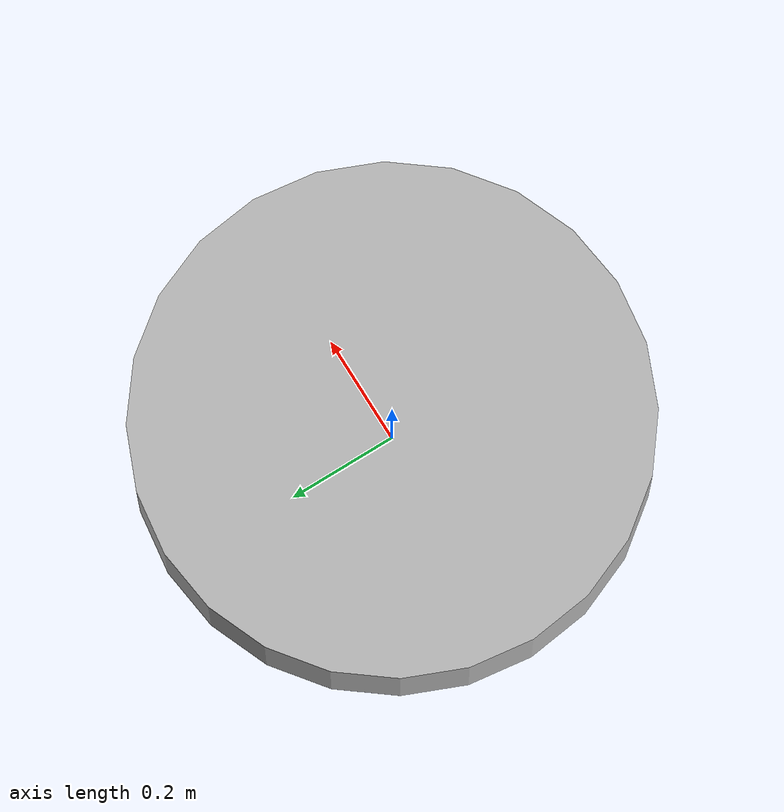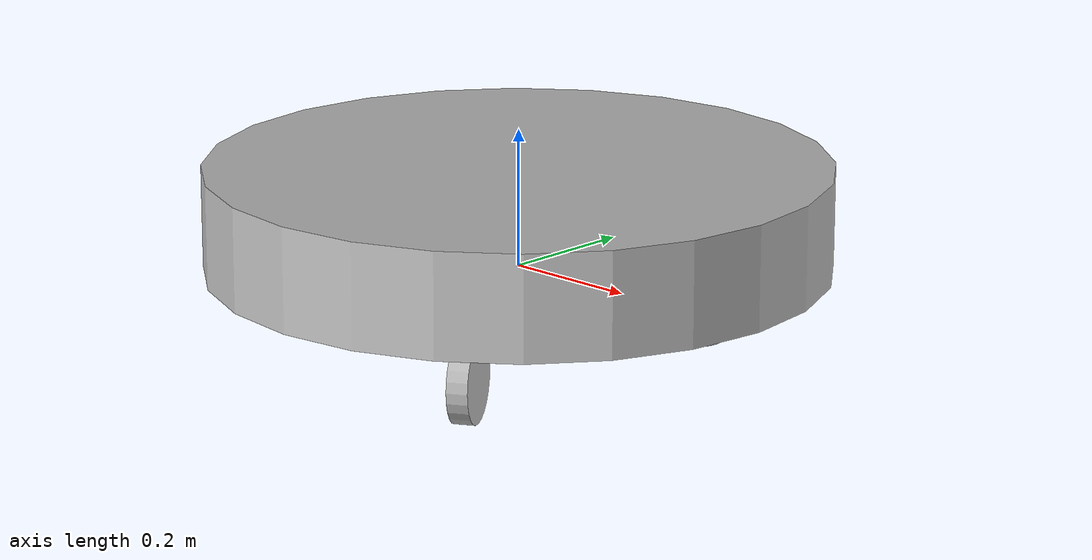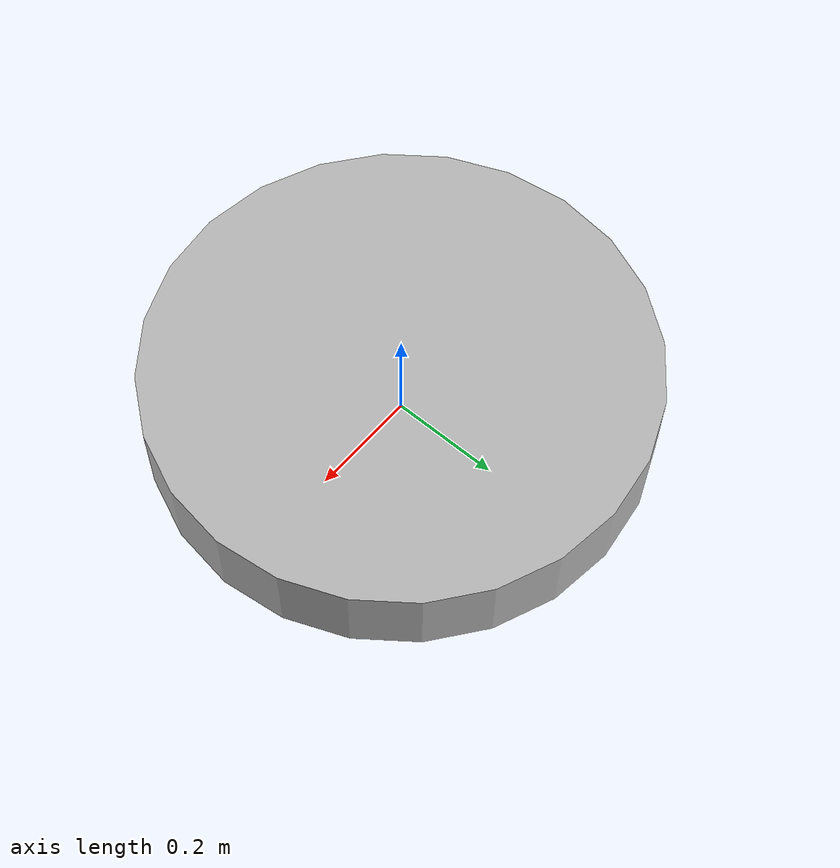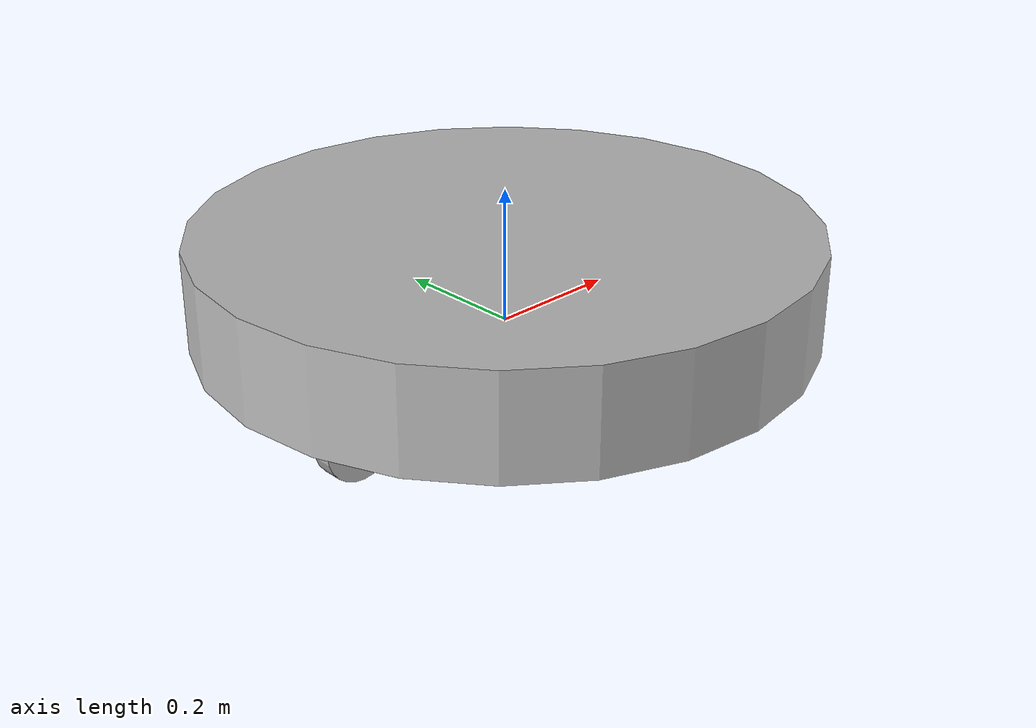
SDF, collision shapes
<?xml version='1.0'?>
<sdf version="1.6">
	<model name='booblik'>
		<!-- База бублика -->
		<link name='base_link'>
			<inertial>
				<mass>15</mass>
				<inertia>
					<ixx>0.7875</ixx>
					<ixy>0</ixy>
					<ixz>0</ixz>
					<iyy>0.7875</iyy>
					<iyz>0</iyz>
					<izz>1.5188</izz>
				</inertia>
				<pose>0 0 0.075 0 0 0</pose>
			</inertial>
			<collision name='main_body'>
				<geometry>
					<cylinder>
						<radius>0.45</radius>
						<length>0.15</length>
					</cylinder>
				</geometry>
				<pose>0 0 0.075 0 0 0</pose>
				<surface>
					<friction>
						<ode />
					</friction>
					<bounce />
					<contact />
				</surface>
			</collision>
			<visual name='visual'>
				<geometry>
					<mesh>
						<uri>file:///model://booblik/meshes/booblik.dae</uri>
					</mesh>
				</geometry>
			</visual>
			<pose>0 0 0 0 0 3.141592654</pose>
			<sensor name='navsat' type='navsat'>
				<always_on>true</always_on>
				<update_rate>10</update_rate>
				<gps/>
			</sensor>
			<sensor name='imu' type='imu'>
				<pose>0 0 0 0 0 0</pose>
				<update_rate>20</update_rate>
				<enable_metrics>false</enable_metrics>
				<imu>
					<orientation_reference_frame>
						<localization>CUSTOM</localization>
						<custom_rpy>0 0 0</custom_rpy>
						<grav_dir_x>1 0 0</grav_dir_x>
					</orientation_reference_frame>
					<angular_velocity>
						<x>
							<noise type='gaussian'>
								<mean>0</mean>
								<stddev>0.0089999999999999993</stddev>
								<bias_mean>0.00075000000000000002</bias_mean>
								<bias_stddev>0.0050000000000000001</bias_stddev>
								<dynamic_bias_stddev>2.0000000000000002e-05</dynamic_bias_stddev>
								<dynamic_bias_correlation_time>400</dynamic_bias_correlation_time>
								<precision>0.00025000000000000001</precision>
							</noise>
						</x>
						<y>
							<noise type='gaussian'>
								<mean>0</mean>
								<stddev>0.0089999999999999993</stddev>
								<bias_mean>0.00075000000000000002</bias_mean>
								<bias_stddev>0.0050000000000000001</bias_stddev>
								<dynamic_bias_stddev>2.0000000000000002e-05</dynamic_bias_stddev>
								<dynamic_bias_correlation_time>400</dynamic_bias_correlation_time>
								<precision>0.00025000000000000001</precision>
							</noise>
						</y>
						<z>
							<noise type='gaussian'>
								<mean>0</mean>
								<stddev>0.0089999999999999993</stddev>
								<bias_mean>0.00075000000000000002</bias_mean>
								<bias_stddev>0.0050000000000000001</bias_stddev>
								<dynamic_bias_stddev>2.0000000000000002e-05</dynamic_bias_stddev>
								<dynamic_bias_correlation_time>400</dynamic_bias_correlation_time>
								<precision>0.00025000000000000001</precision>
							</noise>
						</z>
					</angular_velocity>
					<linear_acceleration>
						<x>
							<noise type='gaussian'>
								<mean>0</mean>
								<stddev>0.021000000000000001</stddev>
								<bias_mean>0.050000000000000003</bias_mean>
								<bias_stddev>0.0074999999999999997</bias_stddev>
								<dynamic_bias_stddev>0.00037500000000000001</dynamic_bias_stddev>
								<dynamic_bias_correlation_time>175</dynamic_bias_correlation_time>
								<precision>0.0050000000000000001</precision>
							</noise>
						</x>
						<y>
							<noise type='gaussian'>
								<mean>0</mean>
								<stddev>0.021000000000000001</stddev>
								<bias_mean>0.050000000000000003</bias_mean>
								<bias_stddev>0.0074999999999999997</bias_stddev>
								<dynamic_bias_stddev>0.00037500000000000001</dynamic_bias_stddev>
								<dynamic_bias_correlation_time>175</dynamic_bias_correlation_time>
								<precision>0.0050000000000000001</precision>
							</noise>
						</y>
						<z>
							<noise type='gaussian'>
								<mean>0</mean>
								<stddev>0.021000000000000001</stddev>
								<bias_mean>0.050000000000000003</bias_mean>
								<bias_stddev>0.0074999999999999997</bias_stddev>
								<dynamic_bias_stddev>0.00037500000000000001</dynamic_bias_stddev>
								<dynamic_bias_correlation_time>175</dynamic_bias_correlation_time>
								<precision>0.0050000000000000001</precision>
							</noise>
						</z>
					</linear_acceleration>
					<enable_orientation>true</enable_orientation>
				</imu>
			</sensor>
			<sensor name='camera' type='camera'>
				<pose>-0.288468360 0 0.248385619 0 -0.3 3.141592654</pose>
				<topic>__default__</topic>
				<update_rate>24</update_rate>
				<enable_metrics>false</enable_metrics>
				<visualize>true</visualize>
				<camera name='camera'>
					<pose>0 0 0 0 0 0</pose>
					<horizontal_fov>2.094395102</horizontal_fov>
					<image>
						<width>1280</width>
						<height>720</height>
						<format>RGB_INT8</format>
						<anti_aliasing>4</anti_aliasing>
					</image>
					<camera_info_topic>camera_info</camera_info_topic>
					<trigger_topic></trigger_topic>
					<triggered>false</triggered>
					<clip>
						<near>0.050000000000000003</near>
						<far>300</far>
					</clip>
					<save enabled='false'>
						<path>__default__</path>
					</save>
					<visibility_mask>4294967295</visibility_mask>
					<noise>
						<type>gaussian</type>
						<mean>0</mean>
						<stddev>0.0070000000000000001</stddev>
					</noise>
					<distortion>
						<k1>0</k1>
						<k2>0</k2>
						<k3>0</k3>
						<p1>0</p1>
						<p2>0</p2>
						<center>0.5 0.5</center>
					</distortion>
					<lens>
						<type>stereographic</type>
						<scale_to_hfov>true</scale_to_hfov>
						<cutoff_angle>1.5707963267948966</cutoff_angle>
						<env_texture_size>256</env_texture_size>
					</lens>
					<optical_frame_id></optical_frame_id>
				</camera>
			</sensor>
			<enable_wind>false</enable_wind>
		</link>
		<link name='left_propeller_link'>
			<pose>0.140000000 0.242487113 -0.082455806 0 1.570796327 2.617993878</pose>
			<inertial>
				<pose>0 0 0 0 0 0</pose>
				<mass>0.1</mass>
				<inertia>
					<ixx>0.000009333</ixx>
					<ixy>0</ixy>
					<ixz>0</ixz>
					<iyy>0.000009333</iyy>
					<iyz>0</iyz>
					<izz>0.000018</izz>
				</inertia>
			</inertial>
			<collision name='collision'>
				<geometry>
					<cylinder>
						<radius>0.06</radius>
						<length>0.03</length>
					</cylinder>
				</geometry>
				<surface>
					<friction>
						<ode/>
					</friction>
					<bounce/>
					<contact/>
				</surface>
			</collision>
			<visual name='visual'>
				<pose>0 0 -0.01 0 0 0</pose>
				<geometry>
					<mesh>
						<uri>file:///model://booblik/meshes/prop.dae</uri>
					</mesh>
				</geometry>
			</visual>
			<enable_wind>false</enable_wind>
		</link>
		<joint name='left_engine_propeller_joint' type='revolute'>
			<pose>0 0 0 0 0 0</pose>
			<parent>base_link</parent>
			<child>left_propeller_link</child>
			<axis>
				<xyz>0 0 -1</xyz>
				<limit>
					<lower>-inf</lower>
					<upper>inf</upper>
					<effort>100</effort>
					<stiffness>100000000</stiffness>
					<dissipation>1</dissipation>
				</limit>
				<dynamics>
					<friction>0.050000000000000003</friction>
					<damping>0.050000000000000003</damping>
				</dynamics>
			</axis>
		</joint>
		<link name='right_propeller_link'>
			<pose>0.140000000 -0.242487113 -0.082455806 0 1.570796327 0.523598775</pose>
			<inertial>
				<pose>0 0 0 0 0 0</pose>
				<mass>0.1</mass>
				<inertia>
					<ixx>0.000009333</ixx>
					<ixy>0</ixy>
					<ixz>0</ixz>
					<iyy>0.000009333</iyy>
					<iyz>0</iyz>
					<izz>0.000018</izz>
				</inertia>
			</inertial>
			<collision name='collision'>
				<geometry>
					<cylinder>
						<radius>0.06</radius>
						<length>0.03</length>
					</cylinder>
				</geometry>
				<surface>
					<friction>
						<ode/>
					</friction>
					<bounce/>
					<contact/>
				</surface>
			</collision>
			<visual name='visual'>
				<pose>0 0 -0.01 0 0 0</pose>
				<geometry>
					<mesh>
						<uri>file:///model://booblik/meshes/prop.dae</uri>
					</mesh>
				</geometry>
			</visual>
			<enable_wind>false</enable_wind>
		</link>
		<joint name='right_engine_propeller_joint' type='revolute'>
			<pose>0 0 0 0 0 0</pose>
			<parent>base_link</parent>
			<child>right_propeller_link</child>
			<axis>
				<xyz>0 0 -1</xyz>
				<limit>
					<lower>-inf</lower>
					<upper>inf</upper>
					<effort>100</effort>
					<stiffness>100000000</stiffness>
					<dissipation>1</dissipation>
				</limit>
				<dynamics>
					<friction>0.050000000000000003</friction>
					<damping>0.050000000000000003</damping>
				</dynamics>
			</axis>
		</joint>
		<link name='back_propeller_link'>
			<pose>-0.280 0 -0.082455806 0 1.570796327 -1.570796326</pose>
			<inertial>
				<pose>0 0 0 0 0 0</pose>
				<mass>0.1</mass>
				<inertia>
					<ixx>0.000009333</ixx>
					<ixy>0</ixy>
					<ixz>0</ixz>
					<iyy>0.000009333</iyy>
					<iyz>0</iyz>
					<izz>0.000018</izz>
				</inertia>
			</inertial>
			<collision name='collision'>
				<geometry>
					<cylinder>
						<radius>0.06</radius>
						<length>0.03</length>
					</cylinder>
				</geometry>
				<surface>
					<friction>
						<ode/>
					</friction>
					<bounce/>
					<contact/>
				</surface>
			</collision>
			<visual name='visual'>
				<pose>0 0 -0.01 0 0 0</pose>
				<geometry>
					<mesh>
						<uri>file:///model://booblik/meshes/prop.dae</uri>
					</mesh>
				</geometry>
			</visual>
			<enable_wind>false</enable_wind>
		</link>
		<joint name='back_engine_propeller_joint' type='revolute'>
			<pose>0 0 0 0 0 0</pose>
			<parent>base_link</parent>
			<child>back_propeller_link</child>
			<axis>
				<xyz>0 0 -1</xyz>
				<limit>
					<lower>-inf</lower>
					<upper>inf</upper>
					<effort>100</effort>
					<stiffness>100000000</stiffness>
					<dissipation>1</dissipation>
				</limit>
				<dynamics>
					<friction>0.050000000000000003</friction>
					<damping>0.050000000000000003</damping>
				</dynamics>
			</axis>
		</joint>
		<static>false</static>
		<self_collide>false</self_collide>
		<plugin name="vrp::PolyhedraBuoyancyDrag" filename="libPolyhedraBuoyancyDrag.so">
			<fluid_density>1000</fluid_density>
			<fluid_level>0.0</fluid_level>
			<linear_drag>11.0</linear_drag>
			<angular_drag>3.0</angular_drag>
			<buoyancy name="main_body_buoyancy">
				<link_name>base_link</link_name>
				<pose>0 0 0.075 0 0 0</pose>
				<geometry>
					<cylinder>
						<radius>0.45</radius>
						<length>0.15</length>
					</cylinder>
				</geometry>
			</buoyancy>
			<wavefield>
				<size>1000 1000</size>
				<cell_count>50.0 50.0</cell_count>
				<wave>
					<model>PMS</model>
					<period>5.0</period>
					<number>3</number>
					<scale>1.1</scale>
					<gain>0.3</gain>
					<direction>1 0</direction>
					<angle>0.4</angle>
					<tau>2.0</tau>
					<amplitude>0.0</amplitude>
					<steepness>0.0</steepness>
				</wave>
			</wavefield>
		</plugin>
		<plugin filename="gz-sim-thruster-system" name="gz::sim::systems::Thruster">
			<joint_name>left_engine_propeller_joint</joint_name>
			<thrust_coefficient>0.5</thrust_coefficient>
			<wake_fraction>1.0</wake_fraction>
			<fluid_density>1000</fluid_density>
			<propeller_diameter>0.11</propeller_diameter>
			<max_thrust_cmd>20</max_thrust_cmd>
			<min_thrust_cmd>-20</min_thrust_cmd>
			<topic>thrusters/left/thrust</topic>
		</plugin>
		<plugin filename="gz-sim-thruster-system" name="gz::sim::systems::Thruster">
			<joint_name>right_engine_propeller_joint</joint_name>
			<thrust_coefficient>0.5</thrust_coefficient>
			<wake_fraction>1.0</wake_fraction>
			<fluid_density>1000</fluid_density>
			<propeller_diameter>0.11</propeller_diameter>
			<max_thrust_cmd>20</max_thrust_cmd>
			<min_thrust_cmd>-20</min_thrust_cmd>
			<topic>thrusters/right/thrust</topic>
		</plugin>
		<plugin filename="gz-sim-thruster-system" name="gz::sim::systems::Thruster">
			<joint_name>back_engine_propeller_joint</joint_name>
			<thrust_coefficient>0.5</thrust_coefficient>
			<wake_fraction>1.0</wake_fraction>
			<fluid_density>1000</fluid_density>
			<propeller_diameter>0.11</propeller_diameter>
			<max_thrust_cmd>20</max_thrust_cmd>
			<min_thrust_cmd>-20</min_thrust_cmd>
			<topic>thrusters/back/thrust</topic>
		</plugin>
		<plugin
      filename="gz-sim-odometry-publisher-system"
      name="gz::sim::systems::OdometryPublisher">
      <dimensions>3</dimensions>
      <odom_publish_frequency>10.0</odom_publish_frequency>
      <odom_frame>map</odom_frame>
      <odom_topic>booblik/odometry</odom_topic>
      <robot_base_frame>booblik/base_link</robot_base_frame>
     </plugin>
	</model>
</sdf>
